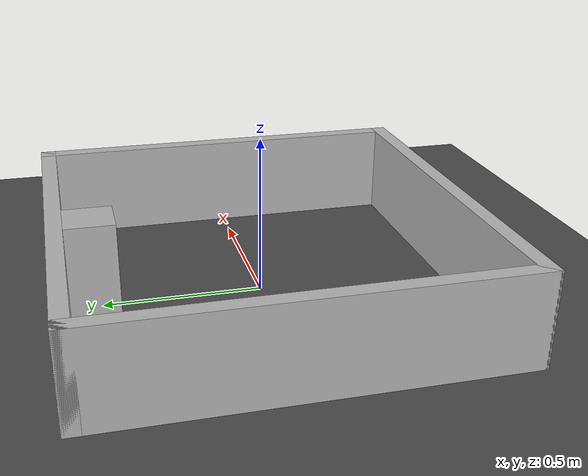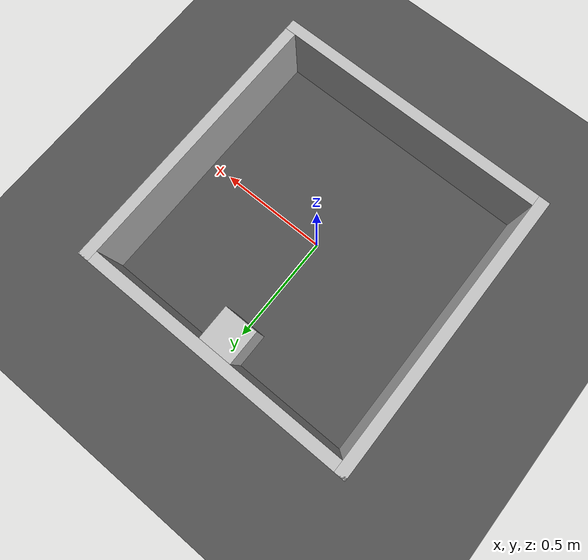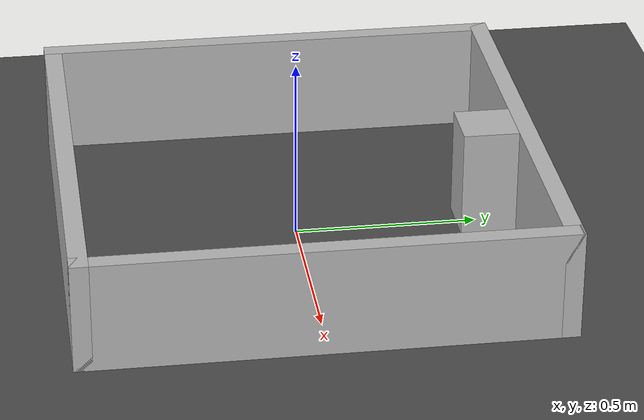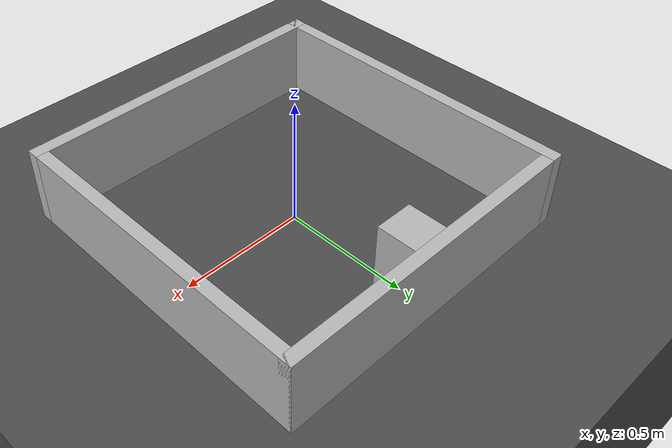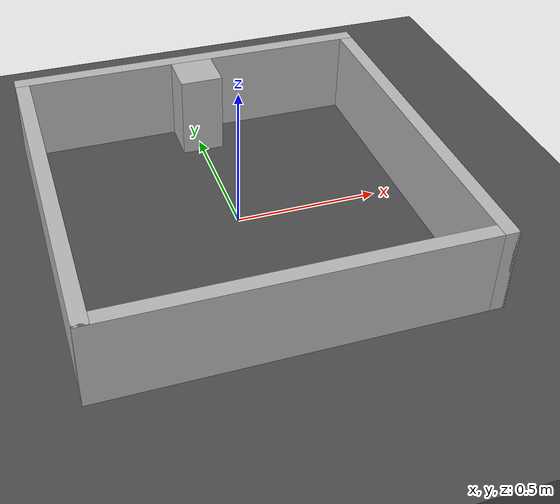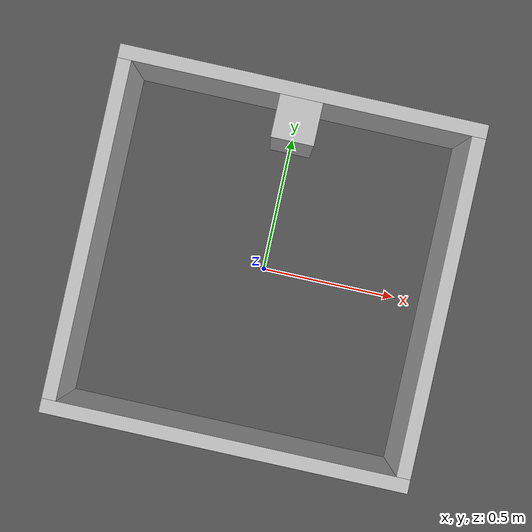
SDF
<?xml version="1.0" ?>
<sdf version="1.7">

  <world name="default">

    <gravity>0 0 -9.8</gravity>

    <magnetic_field>6e-6 2.3e-5 -4.2e-5</magnetic_field>

    <atmosphere type="adiabatic"/>

    <scene>
      <ambient>0.4 0.4 0.4 1</ambient>
      <background>0.7 0.7 0.7 1</background>
      <shadows>true</shadows>
    </scene>

    <physics name="1ms" type="ignored">
      <max_step_size>0.001</max_step_size>
      <real_time_factor>1</real_time_factor>
      <real_time_update_rate>1000</real_time_update_rate>
    </physics>

    <plugin name="gz::sim::systems::Physics"
            filename="gz-sim-physics-system"/>

    <plugin name="gz::sim::systems::UserCommands"
            filename="gz-sim-user-commands-system"/>

    <plugin name="gz::sim::systems::SceneBroadcaster"
            filename="gz-sim-scene-broadcaster-system"/>

    <plugin name="gz::sim::systems::Contact"
            filename="gz-sim-contact-system"/>

    <plugin name="gz::sim::systems::Sensors"
            filename="gz-sim-sensors-system">
      <render_engine>ogre2</render_engine>
    </plugin>

    <!-- Ground -->

    <model name="ground">
      <static>true</static>
      <pose>0 0 -0.5 0 0 0</pose>

      <link name="ground_link">

        <collision name="ground_collision">
          <geometry>
            <box>
              <size>100 100 1</size>
            </box>
          </geometry>

          <surface>
            <friction>
              <ode>
                <mu>1.0</mu>
                <mu2>1.0</mu2>
              </ode>
            </friction>
          </surface>
        </collision>

        <visual name="ground_visual">
          <geometry>
            <box>
              <size>100 100 1</size>
            </box>
          </geometry>

          <material>
            <ambient>0.3 0.3 0.3 1</ambient>
            <diffuse>0.3 0.3 0.3 1</diffuse>
          </material>
        </visual>

      </link>
    </model>

    <!-- NORTH WALL -->
    <model name="north_wall">
      <static>true</static>
      <pose>0 0.625 0.15 0 0 0</pose>

      <link name="link">
        <collision name="collision">
          <geometry>
            <box>
              <size>1.30 0.05 0.30</size>
            </box>
          </geometry>
        </collision>

        <visual name="visual">
          <geometry>
            <box>
              <size>1.30 0.05 0.30</size>
            </box>
          </geometry>
        </visual>
      </link>
    </model>

    <!-- SOUTH WALL -->
    <model name="south_wall">
      <static>true</static>
      <pose>0 -0.625 0.15 0 0 0</pose>

      <link name="link">
        <collision name="collision">
          <geometry>
            <box>
              <size>1.30 0.05 0.30</size>
            </box>
          </geometry>
        </collision>

        <visual name="visual">
          <geometry>
            <box>
              <size>1.30 0.05 0.30</size>
            </box>
          </geometry>
        </visual>
      </link>
    </model>

    <!-- EAST WALL -->
    <model name="east_wall">
      <static>true</static>
      <pose>0.625 0 0.15 0 0 0</pose>

      <link name="link">
        <collision name="collision">
          <geometry>
            <box>
              <size>0.05 1.30 0.30</size>
            </box>
          </geometry>
        </collision>

        <visual name="visual">
          <geometry>
            <box>
              <size>0.05 1.30 0.30</size>
            </box>
          </geometry>
        </visual>
      </link>
    </model>

    <!-- WEST WALL -->
    <model name="west_wall">
      <static>true</static>
      <pose>-0.625 0 0.15 0 0 0</pose>

      <link name="link">
        <collision name="collision">
          <geometry>
            <box>
              <size>0.05 1.30 0.30</size>
            </box>
          </geometry>
        </collision>

        <visual name="visual">
          <geometry>
            <box>
              <size>0.05 1.30 0.30</size>
            </box>
          </geometry>
        </visual>
      </link>
    </model>

    <!-- LIGHT -->

    <light name="sun_light" type="directional">

      <cast_shadows>true</cast_shadows>

      <pose>0 0 20 0 0 0</pose>

      <diffuse>1 1 1 1</diffuse>
      <specular>0.2 0.2 0.2 1</specular>

      <attenuation>
        <range>1000</range>
        <constant>0.9</constant>
        <linear>0.01</linear>
        <quadratic>0.001</quadratic>
      </attenuation>

      <direction>-0.5 0.1 -1</direction>

    </light>

        <!-- NORTH WALL CENTER PILLAR -->
    <model name="north_wall_pillar">
      <static>true</static>
      <pose>0 0.5238 0.15 0 0 0</pose>

      <link name="link">
        <collision name="collision">
          <geometry>
            <box>
              <size>0.1524 0.1524 0.30</size>
            </box>
          </geometry>
        </collision>

        <visual name="visual">
          <geometry>
            <box>
              <size>0.1524 0.1524 0.30</size>
            </box>
          </geometry>
        </visual>
      </link>
    </model>

  </world>

</sdf>
